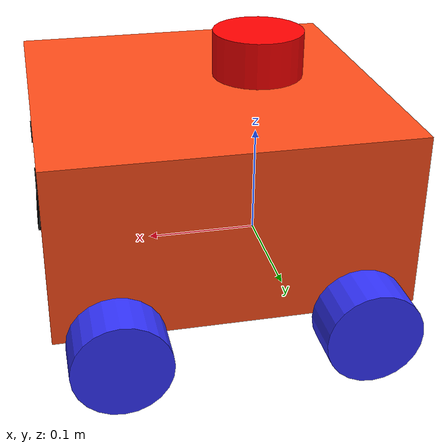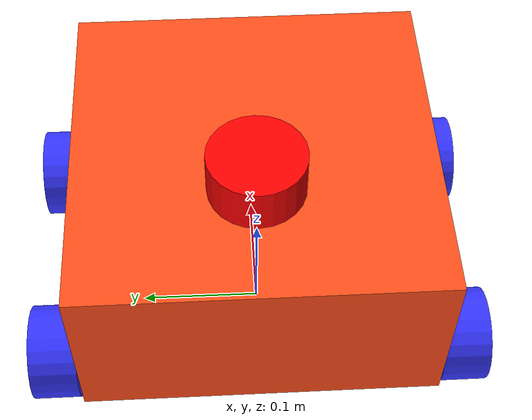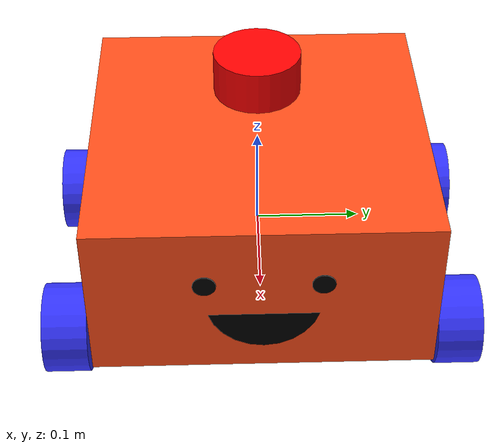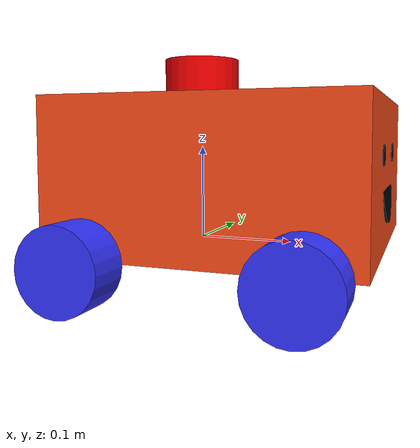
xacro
<?xml version="1.0"?>
<robot xmlns:xacro="http://www.ros.org/wiki/xacro"  name="bot">
    <xacro:include filename="robot_core.xacro" />
    <xacro:include filename="gazebo_control.xacro" />
    <xacro:include filename="lidar.xacro" />
    <xacro:include filename="ros2_control.xacro" />
    <xacro:include filename="face.xacro" />
</robot>

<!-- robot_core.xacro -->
<robot xmlns:xacro="http://www.ros.org/wiki/xacro" >

    <xacro:include filename="inertial_macros.xacro"/>

    <material name="white">
        <color rgba="1 1 1 1" />
    </material>

    <material name="orange">
        <color rgba="1 0.3 0.1 1"/>
    </material>

    <material name="blue">
        <color rgba="0.2 0.2 1 1"/>
    </material>

    <material name="black">
        <color rgba="0 0 0 1"/>
    </material>

    <material name="red">
        <color rgba="1 0 0 1"/>
    </material>

    <!-- BASE LINK -->

    <link name="base_link">

    </link>

    <!-- CHASSIS LINK -->

    <joint name="chassis_joint" type="fixed">
        <parent link="base_link"/>
        <child link="chassis"/>
        <origin xyz="-0.1 0 0"/>
    </joint>

    <link name="chassis">
        <visual>
            <origin xyz="0.15 0 0.075"/>
            <geometry>
                <box size="0.3 0.3 0.15"/>
            </geometry>
            <material name="orange"/>
        </visual>
        <collision>
            <origin xyz="0.15 0 0.075"/>
            <geometry>
                <box size="0.3 0.3 0.15"/>
            </geometry>
        </collision>
        <xacro:inertial_box mass="1.5" x="0.3" y="0.3" z="0.15">
            <origin xyz="0.15 0 0.075" rpy="0 0 0"/>
        </xacro:inertial_box>
    </link>

    <gazebo reference="chassis">
        <material>Gazebo/Orange</material>
    </gazebo>

    <!-- LEFT WHEEL LINK -->

    <joint name="left_wheel_joint" type="continuous">
        <parent link="base_link"/>
        <child link="left_wheel"/>
        <origin xyz="-0.05 0.175 0" rpy="-${pi/2} 0 0" />
        <axis xyz="0 0 1"/>
    </joint>

    <link name="left_wheel">
        <visual>
            <geometry>
                <cylinder radius="0.04" length="0.04"/>
            </geometry>
            <material name="blue"/>
        </visual>
        <collision>
            <geometry>
                <cylinder radius="0.04" length="0.04"/>
            </geometry>
        </collision>
        <xacro:inertial_cylinder mass="0.05" length="0.04" radius="0.04">
            <origin xyz="0 0 0" rpy="0 0 0"/>
        </xacro:inertial_cylinder>
    </link>

    <gazebo reference="left_wheel">
        <material>Gazebo/Blue</material>
    </gazebo>

    <!-- RIGHT WHEEL LINK -->

    <joint name="right_wheel_joint" type="continuous">
        <parent link="base_link"/>
        <child link="right_wheel"/>
        <origin xyz="-0.05 -0.175 0" rpy="${pi/2} 0 0" />
        <axis xyz="0 0 -1"/>
    </joint>

    <link name="right_wheel">
        <visual>
            <geometry>
                <cylinder radius="0.04" length="0.04"/>
            </geometry>
            <material name="blue"/>
        </visual>
        <collision>
            <geometry>
                <cylinder radius="0.04" length="0.04"/>
            </geometry>
        </collision>
        <xacro:inertial_cylinder mass="0.05" length="0.04" radius="0.04">
            <origin xyz="0 0 0" rpy="0 0 0"/>
        </xacro:inertial_cylinder>
    </link>

    <gazebo reference="right_wheel">
        <material>Gazebo/Blue</material>
    </gazebo>

   <!-- FRONT SUPPORT WHEEL -->

<joint name="front_support_wheel_joint" type="fixed">
    <parent link="base_link"/>
    <child link="front_support_wheel"/>
    <origin xyz="0.15 0.175 0" rpy="-${pi/2} 0 0"/>
    <axis xyz="0 0 1"/>
</joint>

<link name="front_support_wheel">
    <visual>
        <geometry>
            <cylinder radius="0.04" length="0.04"/>
        </geometry>
        <material name="blue"/>
    </visual>
    <collision>
        <geometry>
            <cylinder radius="0.04" length="0.04"/>
        </geometry>
    </collision>
    <xacro:inertial_cylinder mass="0.5" length="0.04" radius="0.04">
        <origin xyz="0 0 0" rpy="0 0 0"/>
    </xacro:inertial_cylinder>
</link>

    <gazebo reference="front_support_wheel">
        <material>Gazebo/Blue</material>
        <mu1 value="0.001"/>
        <mu2 value="0.001"/>
    </gazebo>

<!-- REAR SUPPORT WHEEL -->

<joint name="rear_support_wheel_joint" type="fixed">
    <parent link="base_link"/>
    <child link="rear_support_wheel"/>
    <origin xyz="0.15 -0.175 0" rpy="-${pi/2} 0 0"/>
    <axis xyz="0 0 -1"/>
</joint>

<link name="rear_support_wheel">
    <visual>
        <geometry>
            <cylinder radius="0.04" length="0.04"/>
        </geometry>
        <material name="blue"/>
    </visual>
    <collision>
        <geometry>
            <cylinder radius="0.04" length="0.04"/>
        </geometry>
    </collision>
    <xacro:inertial_cylinder mass="0.5" length="0.04" radius="0.04">
        <origin xyz="0 0 0" rpy="0 0 0"/>
    </xacro:inertial_cylinder>
</link>

    <gazebo reference="rear_support_wheel">
        <material>Gazebo/Blue</material>
        <mu1 value="0.001"/>
        <mu2 value="0.001"/>
    </gazebo>
</robot>

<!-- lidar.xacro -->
<robot xmlns:xacro="http://www.ros.org/wiki/xacro" >

    <joint name="laser_joint " type="fixed">
            <parent link="chassis"/>
            <child link="laser_frame"/>
            <origin xyz="0.1 0 0.175" rpy="0 0 0"/>

    </joint>

    <link name="laser_frame">
        <visual>
            <geometry>
                <cylinder radius="0.04" length="0.04"/>
            </geometry>
            <material name="red"/>
        </visual>
        <collision>
            <geometry>
                <cylinder radius="0.04" length="0.04"/>
            </geometry>
        </collision>
        <xacro:inertial_cylinder mass="0.3" length="0.04" radius="0.04">
            <origin xyz="0 0 0" rpy="0 0 0"/>
        </xacro:inertial_cylinder>
    </link>

    <gazebo reference="laser_frame">
        <material>Gazebo/Red</material>

        <sensor name="laser" type="ray">
            <pose> 0 0 0 0 0 0 </pose>
            <visualize>true</visualize>
            <update_rate>10</update_rate>
            <ray>
                <scan>
                    <horizontal>
                        <samples>360</samples>
                        <resolution>1</resolution>
                        <min_angle>-3.14</min_angle>
                        <max_angle>3.14</max_angle>
                    </horizontal>
                </scan>
                <range>
                    <min>0.3</min>
                    <max>12</max>
                </range>
            </ray>

            <plugin name="laser_controller" filename="libgazebo_ros_ray_sensor.so">
                <ros>
                    <argument>~/out:=scan</argument>
                </ros>
                <output_type>sensor_msgs/LaserScan</output_type>
                <frame_name>laser_frame</frame_name>
            </plugin>
        </sensor>
    </gazebo>

</robot>
<!-- Nếu tăng lên 20, 30, 40 Hz thì dữ liệu ra nhanh hơn nhưng máy tính nặng hơn. -->
<!-- Đây là plugin nối giữa Gazebo và ROS 2 -->
<!-- filename="libgazebo_ros_ray_sensor.so" là thư viện plugin dùng để lấy dữ liệu ray sensor trong Gazebo rồi đưa sang ROS. -->

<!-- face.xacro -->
<robot xmlns:xacro="http://www.ros.org/wiki/xacro">

    <joint name="face_joint" type="fixed">
        <parent link="chassis"/>
        <child link="face_link"/>
        <origin xyz="0.3 0 0.075" rpy="0 0 0"/>
    </joint>

    <link name="face_link">

        <!-- mắt trái -->
        <visual>
            <origin xyz="0 0.05 0.02" rpy="0 ${pi/2} 0"/>
            <geometry>
                <cylinder radius="0.01" length="0.002"/>
            </geometry>
            <material name="black"/>
        </visual>

        <!-- mắt phải -->
        <visual>
            <origin xyz="0 -0.05 0.02" rpy="0 ${pi/2} 0"/>
            <geometry>
                <cylinder radius="0.01" length="0.002"/>
            </geometry>
            <material name="black"/>
        </visual>

        <!-- miệng -->
         <visual>
            <origin xyz="-0.011 0 -0.00" rpy="0 ${1.5} 0"/>
            <geometry>
                <cylinder radius="0.05" length="0.02"/>
            </geometry>
            <material name="black"/>
        </visual>

    </link>

    <gazebo reference="face_link">
        <material>Gazebo/Black</material>
    </gazebo>

</robot>
